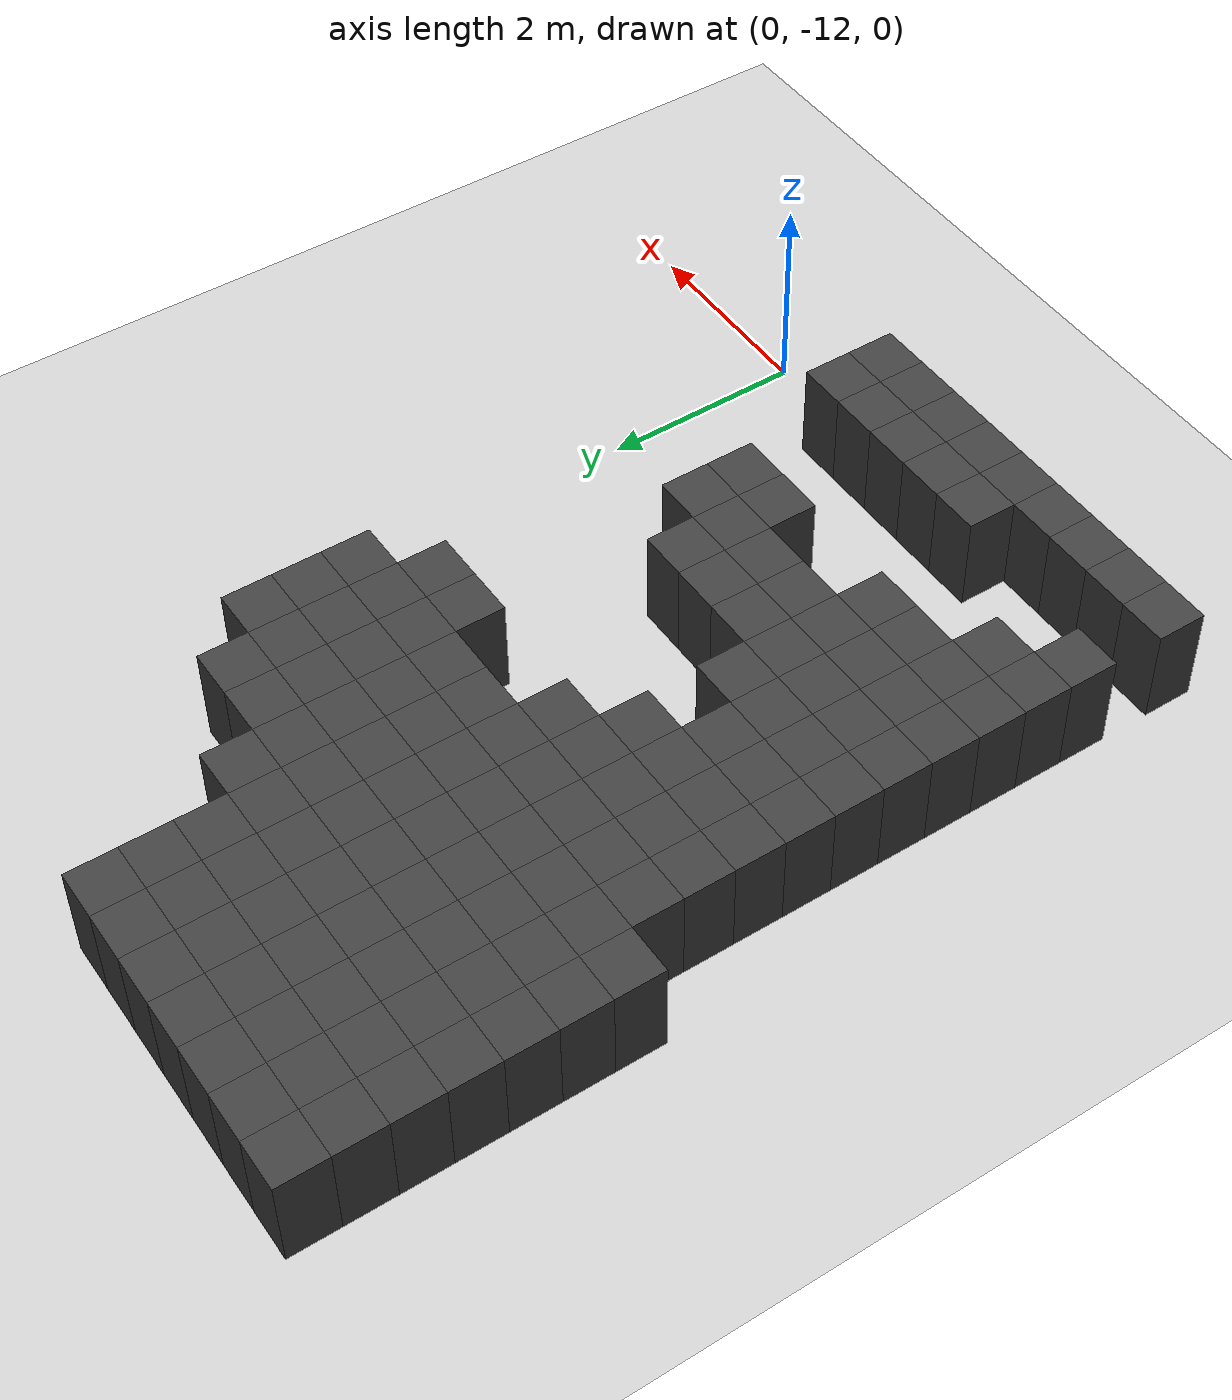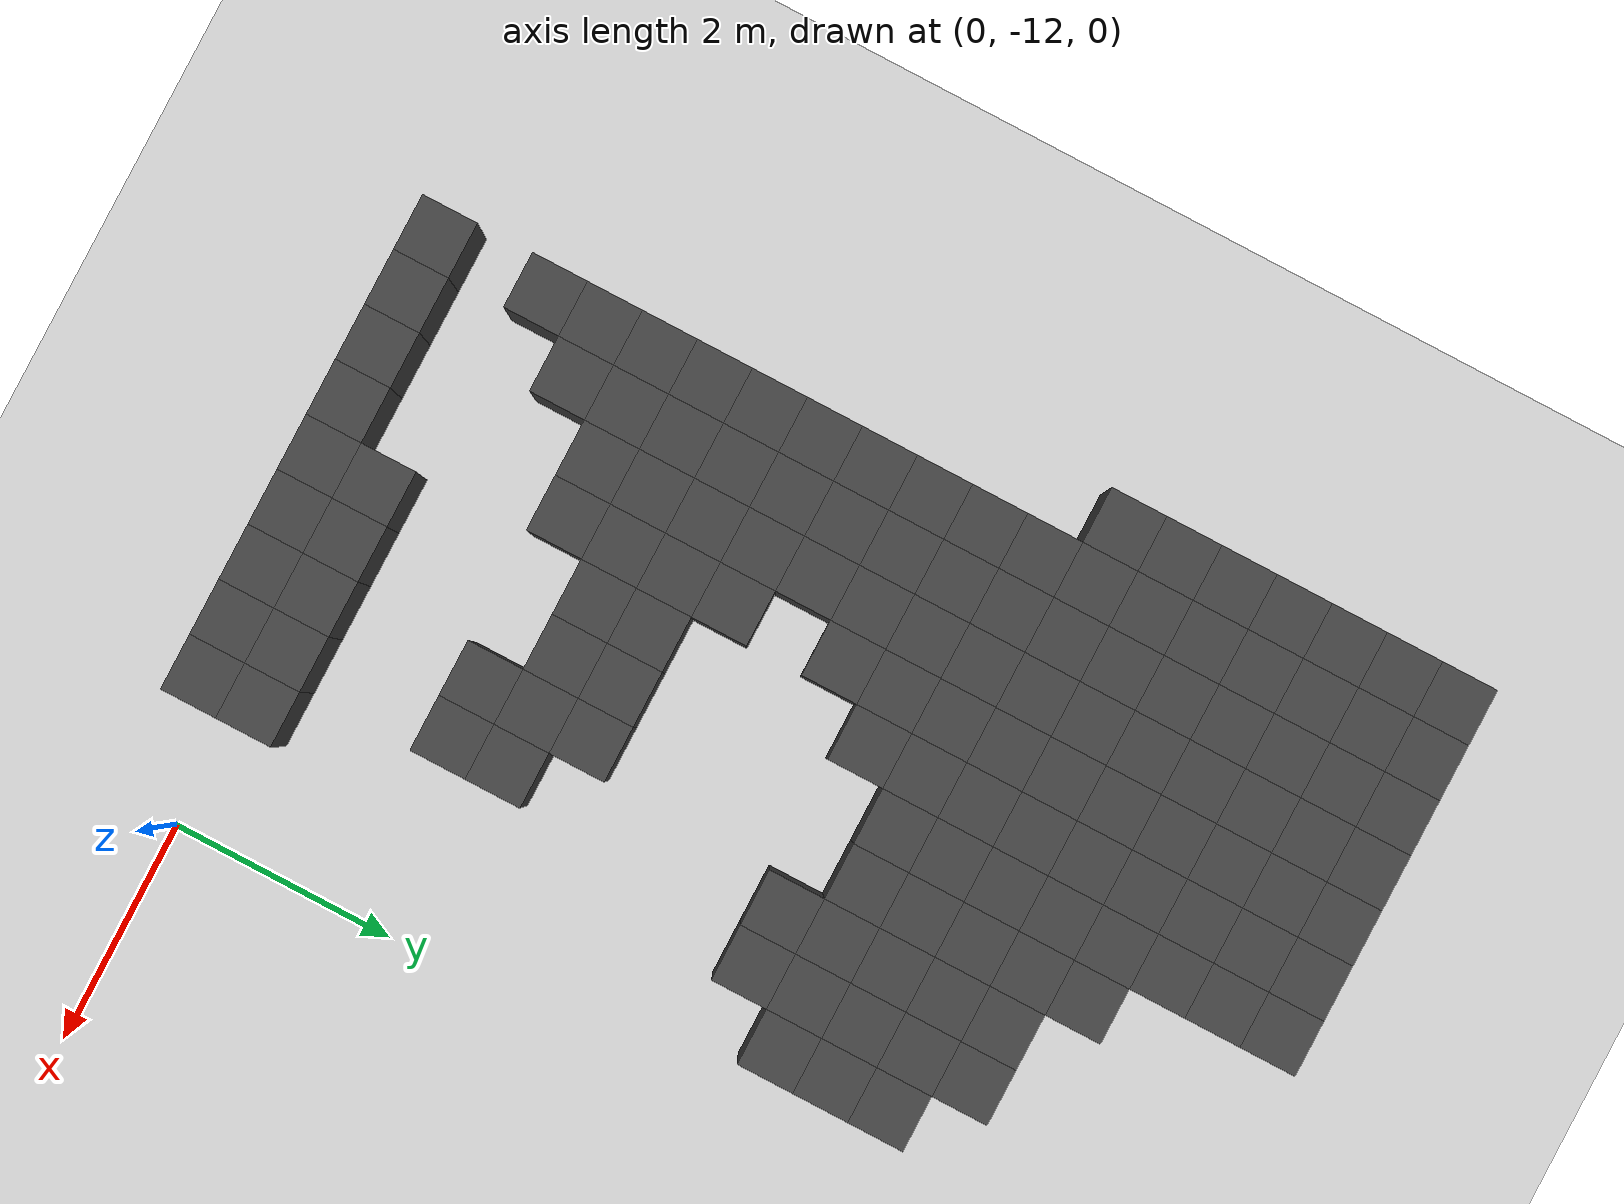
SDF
<sdf version="1.7">
 <world name="map_9544">
  <model name="ground_plane">
   <static>true</static>
   <link name="link">
    <collision name="collision">
     <geometry><plane><normal>0 0 1</normal><size>200 200</size></plane></geometry>
    </collision>
    <visual name="visual">
     <geometry><plane><normal>0 0 1</normal><size>200 200</size></plane></geometry>
     <material><ambient>0.8 0.8 0.8 1</ambient><diffuse>0.8 0.8 0.8 1</diffuse></material>
    </visual>
   </link>
  </model>
  <model name="maze_environment">
   <static>true</static>
   <link name="wall_519">
    <pose>-5.750 -3.250 0.500 0 0 0</pose>
    <collision name="col"><geometry><box><size>0.5 0.5 1.0</size></box></geometry></collision>
    <visual name="vis">
     <geometry><box><size>0.5 0.5 1.0</size></box></geometry>
     <material><ambient>0.15 0.15 0.15 1</ambient><diffuse>0.25 0.25 0.25 1</diffuse></material>
    </visual>
   </link>
   <link name="wall_520">
    <pose>-5.250 -3.250 0.500 0 0 0</pose>
    <collision name="col"><geometry><box><size>0.5 0.5 1.0</size></box></geometry></collision>
    <visual name="vis">
     <geometry><box><size>0.5 0.5 1.0</size></box></geometry>
     <material><ambient>0.15 0.15 0.15 1</ambient><diffuse>0.25 0.25 0.25 1</diffuse></material>
    </visual>
   </link>
   <link name="wall_521">
    <pose>-4.750 -3.250 0.500 0 0 0</pose>
    <collision name="col"><geometry><box><size>0.5 0.5 1.0</size></box></geometry></collision>
    <visual name="vis">
     <geometry><box><size>0.5 0.5 1.0</size></box></geometry>
     <material><ambient>0.15 0.15 0.15 1</ambient><diffuse>0.25 0.25 0.25 1</diffuse></material>
    </visual>
   </link>
   <link name="wall_522">
    <pose>-4.250 -3.250 0.500 0 0 0</pose>
    <collision name="col"><geometry><box><size>0.5 0.5 1.0</size></box></geometry></collision>
    <visual name="vis">
     <geometry><box><size>0.5 0.5 1.0</size></box></geometry>
     <material><ambient>0.15 0.15 0.15 1</ambient><diffuse>0.25 0.25 0.25 1</diffuse></material>
    </visual>
   </link>
   <link name="wall_523">
    <pose>-3.750 -3.250 0.500 0 0 0</pose>
    <collision name="col"><geometry><box><size>0.5 0.5 1.0</size></box></geometry></collision>
    <visual name="vis">
     <geometry><box><size>0.5 0.5 1.0</size></box></geometry>
     <material><ambient>0.15 0.15 0.15 1</ambient><diffuse>0.25 0.25 0.25 1</diffuse></material>
    </visual>
   </link>
   <link name="wall_524">
    <pose>-3.250 -3.250 0.500 0 0 0</pose>
    <collision name="col"><geometry><box><size>0.5 0.5 1.0</size></box></geometry></collision>
    <visual name="vis">
     <geometry><box><size>0.5 0.5 1.0</size></box></geometry>
     <material><ambient>0.15 0.15 0.15 1</ambient><diffuse>0.25 0.25 0.25 1</diffuse></material>
    </visual>
   </link>
   <link name="wall_525">
    <pose>-2.750 -3.250 0.500 0 0 0</pose>
    <collision name="col"><geometry><box><size>0.5 0.5 1.0</size></box></geometry></collision>
    <visual name="vis">
     <geometry><box><size>0.5 0.5 1.0</size></box></geometry>
     <material><ambient>0.15 0.15 0.15 1</ambient><diffuse>0.25 0.25 0.25 1</diffuse></material>
    </visual>
   </link>
   <link name="wall_541">
    <pose>-5.750 -3.750 0.500 0 0 0</pose>
    <collision name="col"><geometry><box><size>0.5 0.5 1.0</size></box></geometry></collision>
    <visual name="vis">
     <geometry><box><size>0.5 0.5 1.0</size></box></geometry>
     <material><ambient>0.15 0.15 0.15 1</ambient><diffuse>0.25 0.25 0.25 1</diffuse></material>
    </visual>
   </link>
   <link name="wall_542">
    <pose>-5.250 -3.750 0.500 0 0 0</pose>
    <collision name="col"><geometry><box><size>0.5 0.5 1.0</size></box></geometry></collision>
    <visual name="vis">
     <geometry><box><size>0.5 0.5 1.0</size></box></geometry>
     <material><ambient>0.15 0.15 0.15 1</ambient><diffuse>0.25 0.25 0.25 1</diffuse></material>
    </visual>
   </link>
   <link name="wall_543">
    <pose>-4.750 -3.750 0.500 0 0 0</pose>
    <collision name="col"><geometry><box><size>0.5 0.5 1.0</size></box></geometry></collision>
    <visual name="vis">
     <geometry><box><size>0.5 0.5 1.0</size></box></geometry>
     <material><ambient>0.15 0.15 0.15 1</ambient><diffuse>0.25 0.25 0.25 1</diffuse></material>
    </visual>
   </link>
   <link name="wall_544">
    <pose>-4.250 -3.750 0.500 0 0 0</pose>
    <collision name="col"><geometry><box><size>0.5 0.5 1.0</size></box></geometry></collision>
    <visual name="vis">
     <geometry><box><size>0.5 0.5 1.0</size></box></geometry>
     <material><ambient>0.15 0.15 0.15 1</ambient><diffuse>0.25 0.25 0.25 1</diffuse></material>
    </visual>
   </link>
   <link name="wall_545">
    <pose>-3.750 -3.750 0.500 0 0 0</pose>
    <collision name="col"><geometry><box><size>0.5 0.5 1.0</size></box></geometry></collision>
    <visual name="vis">
     <geometry><box><size>0.5 0.5 1.0</size></box></geometry>
     <material><ambient>0.15 0.15 0.15 1</ambient><diffuse>0.25 0.25 0.25 1</diffuse></material>
    </visual>
   </link>
   <link name="wall_546">
    <pose>-3.250 -3.750 0.500 0 0 0</pose>
    <collision name="col"><geometry><box><size>0.5 0.5 1.0</size></box></geometry></collision>
    <visual name="vis">
     <geometry><box><size>0.5 0.5 1.0</size></box></geometry>
     <material><ambient>0.15 0.15 0.15 1</ambient><diffuse>0.25 0.25 0.25 1</diffuse></material>
    </visual>
   </link>
   <link name="wall_547">
    <pose>-2.750 -3.750 0.500 0 0 0</pose>
    <collision name="col"><geometry><box><size>0.5 0.5 1.0</size></box></geometry></collision>
    <visual name="vis">
     <geometry><box><size>0.5 0.5 1.0</size></box></geometry>
     <material><ambient>0.15 0.15 0.15 1</ambient><diffuse>0.25 0.25 0.25 1</diffuse></material>
    </visual>
   </link>
   <link name="wall_564">
    <pose>-5.750 -4.250 0.500 0 0 0</pose>
    <collision name="col"><geometry><box><size>0.5 0.5 1.0</size></box></geometry></collision>
    <visual name="vis">
     <geometry><box><size>0.5 0.5 1.0</size></box></geometry>
     <material><ambient>0.15 0.15 0.15 1</ambient><diffuse>0.25 0.25 0.25 1</diffuse></material>
    </visual>
   </link>
   <link name="wall_565">
    <pose>-5.250 -4.250 0.500 0 0 0</pose>
    <collision name="col"><geometry><box><size>0.5 0.5 1.0</size></box></geometry></collision>
    <visual name="vis">
     <geometry><box><size>0.5 0.5 1.0</size></box></geometry>
     <material><ambient>0.15 0.15 0.15 1</ambient><diffuse>0.25 0.25 0.25 1</diffuse></material>
    </visual>
   </link>
   <link name="wall_566">
    <pose>-4.750 -4.250 0.500 0 0 0</pose>
    <collision name="col"><geometry><box><size>0.5 0.5 1.0</size></box></geometry></collision>
    <visual name="vis">
     <geometry><box><size>0.5 0.5 1.0</size></box></geometry>
     <material><ambient>0.15 0.15 0.15 1</ambient><diffuse>0.25 0.25 0.25 1</diffuse></material>
    </visual>
   </link>
   <link name="wall_567">
    <pose>-4.250 -4.250 0.500 0 0 0</pose>
    <collision name="col"><geometry><box><size>0.5 0.5 1.0</size></box></geometry></collision>
    <visual name="vis">
     <geometry><box><size>0.5 0.5 1.0</size></box></geometry>
     <material><ambient>0.15 0.15 0.15 1</ambient><diffuse>0.25 0.25 0.25 1</diffuse></material>
    </visual>
   </link>
   <link name="wall_568">
    <pose>-3.750 -4.250 0.500 0 0 0</pose>
    <collision name="col"><geometry><box><size>0.5 0.5 1.0</size></box></geometry></collision>
    <visual name="vis">
     <geometry><box><size>0.5 0.5 1.0</size></box></geometry>
     <material><ambient>0.15 0.15 0.15 1</ambient><diffuse>0.25 0.25 0.25 1</diffuse></material>
    </visual>
   </link>
   <link name="wall_569">
    <pose>-3.250 -4.250 0.500 0 0 0</pose>
    <collision name="col"><geometry><box><size>0.5 0.5 1.0</size></box></geometry></collision>
    <visual name="vis">
     <geometry><box><size>0.5 0.5 1.0</size></box></geometry>
     <material><ambient>0.15 0.15 0.15 1</ambient><diffuse>0.25 0.25 0.25 1</diffuse></material>
    </visual>
   </link>
   <link name="wall_570">
    <pose>-2.750 -4.250 0.500 0 0 0</pose>
    <collision name="col"><geometry><box><size>0.5 0.5 1.0</size></box></geometry></collision>
    <visual name="vis">
     <geometry><box><size>0.5 0.5 1.0</size></box></geometry>
     <material><ambient>0.15 0.15 0.15 1</ambient><diffuse>0.25 0.25 0.25 1</diffuse></material>
    </visual>
   </link>
   <link name="wall_593">
    <pose>-5.750 -4.750 0.500 0 0 0</pose>
    <collision name="col"><geometry><box><size>0.5 0.5 1.0</size></box></geometry></collision>
    <visual name="vis">
     <geometry><box><size>0.5 0.5 1.0</size></box></geometry>
     <material><ambient>0.15 0.15 0.15 1</ambient><diffuse>0.25 0.25 0.25 1</diffuse></material>
    </visual>
   </link>
   <link name="wall_594">
    <pose>-5.250 -4.750 0.500 0 0 0</pose>
    <collision name="col"><geometry><box><size>0.5 0.5 1.0</size></box></geometry></collision>
    <visual name="vis">
     <geometry><box><size>0.5 0.5 1.0</size></box></geometry>
     <material><ambient>0.15 0.15 0.15 1</ambient><diffuse>0.25 0.25 0.25 1</diffuse></material>
    </visual>
   </link>
   <link name="wall_595">
    <pose>-4.750 -4.750 0.500 0 0 0</pose>
    <collision name="col"><geometry><box><size>0.5 0.5 1.0</size></box></geometry></collision>
    <visual name="vis">
     <geometry><box><size>0.5 0.5 1.0</size></box></geometry>
     <material><ambient>0.15 0.15 0.15 1</ambient><diffuse>0.25 0.25 0.25 1</diffuse></material>
    </visual>
   </link>
   <link name="wall_596">
    <pose>-4.250 -4.750 0.500 0 0 0</pose>
    <collision name="col"><geometry><box><size>0.5 0.5 1.0</size></box></geometry></collision>
    <visual name="vis">
     <geometry><box><size>0.5 0.5 1.0</size></box></geometry>
     <material><ambient>0.15 0.15 0.15 1</ambient><diffuse>0.25 0.25 0.25 1</diffuse></material>
    </visual>
   </link>
   <link name="wall_597">
    <pose>-3.750 -4.750 0.500 0 0 0</pose>
    <collision name="col"><geometry><box><size>0.5 0.5 1.0</size></box></geometry></collision>
    <visual name="vis">
     <geometry><box><size>0.5 0.5 1.0</size></box></geometry>
     <material><ambient>0.15 0.15 0.15 1</ambient><diffuse>0.25 0.25 0.25 1</diffuse></material>
    </visual>
   </link>
   <link name="wall_598">
    <pose>-3.250 -4.750 0.500 0 0 0</pose>
    <collision name="col"><geometry><box><size>0.5 0.5 1.0</size></box></geometry></collision>
    <visual name="vis">
     <geometry><box><size>0.5 0.5 1.0</size></box></geometry>
     <material><ambient>0.15 0.15 0.15 1</ambient><diffuse>0.25 0.25 0.25 1</diffuse></material>
    </visual>
   </link>
   <link name="wall_599">
    <pose>-2.750 -4.750 0.500 0 0 0</pose>
    <collision name="col"><geometry><box><size>0.5 0.5 1.0</size></box></geometry></collision>
    <visual name="vis">
     <geometry><box><size>0.5 0.5 1.0</size></box></geometry>
     <material><ambient>0.15 0.15 0.15 1</ambient><diffuse>0.25 0.25 0.25 1</diffuse></material>
    </visual>
   </link>
   <link name="wall_600">
    <pose>-2.250 -4.750 0.500 0 0 0</pose>
    <collision name="col"><geometry><box><size>0.5 0.5 1.0</size></box></geometry></collision>
    <visual name="vis">
     <geometry><box><size>0.5 0.5 1.0</size></box></geometry>
     <material><ambient>0.15 0.15 0.15 1</ambient><diffuse>0.25 0.25 0.25 1</diffuse></material>
    </visual>
   </link>
   <link name="wall_624">
    <pose>-5.750 -5.250 0.500 0 0 0</pose>
    <collision name="col"><geometry><box><size>0.5 0.5 1.0</size></box></geometry></collision>
    <visual name="vis">
     <geometry><box><size>0.5 0.5 1.0</size></box></geometry>
     <material><ambient>0.15 0.15 0.15 1</ambient><diffuse>0.25 0.25 0.25 1</diffuse></material>
    </visual>
   </link>
   <link name="wall_625">
    <pose>-5.250 -5.250 0.500 0 0 0</pose>
    <collision name="col"><geometry><box><size>0.5 0.5 1.0</size></box></geometry></collision>
    <visual name="vis">
     <geometry><box><size>0.5 0.5 1.0</size></box></geometry>
     <material><ambient>0.15 0.15 0.15 1</ambient><diffuse>0.25 0.25 0.25 1</diffuse></material>
    </visual>
   </link>
   <link name="wall_626">
    <pose>-4.750 -5.250 0.500 0 0 0</pose>
    <collision name="col"><geometry><box><size>0.5 0.5 1.0</size></box></geometry></collision>
    <visual name="vis">
     <geometry><box><size>0.5 0.5 1.0</size></box></geometry>
     <material><ambient>0.15 0.15 0.15 1</ambient><diffuse>0.25 0.25 0.25 1</diffuse></material>
    </visual>
   </link>
   <link name="wall_627">
    <pose>-4.250 -5.250 0.500 0 0 0</pose>
    <collision name="col"><geometry><box><size>0.5 0.5 1.0</size></box></geometry></collision>
    <visual name="vis">
     <geometry><box><size>0.5 0.5 1.0</size></box></geometry>
     <material><ambient>0.15 0.15 0.15 1</ambient><diffuse>0.25 0.25 0.25 1</diffuse></material>
    </visual>
   </link>
   <link name="wall_628">
    <pose>-3.750 -5.250 0.500 0 0 0</pose>
    <collision name="col"><geometry><box><size>0.5 0.5 1.0</size></box></geometry></collision>
    <visual name="vis">
     <geometry><box><size>0.5 0.5 1.0</size></box></geometry>
     <material><ambient>0.15 0.15 0.15 1</ambient><diffuse>0.25 0.25 0.25 1</diffuse></material>
    </visual>
   </link>
   <link name="wall_629">
    <pose>-3.250 -5.250 0.500 0 0 0</pose>
    <collision name="col"><geometry><box><size>0.5 0.5 1.0</size></box></geometry></collision>
    <visual name="vis">
     <geometry><box><size>0.5 0.5 1.0</size></box></geometry>
     <material><ambient>0.15 0.15 0.15 1</ambient><diffuse>0.25 0.25 0.25 1</diffuse></material>
    </visual>
   </link>
   <link name="wall_630">
    <pose>-2.750 -5.250 0.500 0 0 0</pose>
    <collision name="col"><geometry><box><size>0.5 0.5 1.0</size></box></geometry></collision>
    <visual name="vis">
     <geometry><box><size>0.5 0.5 1.0</size></box></geometry>
     <material><ambient>0.15 0.15 0.15 1</ambient><diffuse>0.25 0.25 0.25 1</diffuse></material>
    </visual>
   </link>
   <link name="wall_631">
    <pose>-2.250 -5.250 0.500 0 0 0</pose>
    <collision name="col"><geometry><box><size>0.5 0.5 1.0</size></box></geometry></collision>
    <visual name="vis">
     <geometry><box><size>0.5 0.5 1.0</size></box></geometry>
     <material><ambient>0.15 0.15 0.15 1</ambient><diffuse>0.25 0.25 0.25 1</diffuse></material>
    </visual>
   </link>
   <link name="wall_632">
    <pose>-1.750 -5.250 0.500 0 0 0</pose>
    <collision name="col"><geometry><box><size>0.5 0.5 1.0</size></box></geometry></collision>
    <visual name="vis">
     <geometry><box><size>0.5 0.5 1.0</size></box></geometry>
     <material><ambient>0.15 0.15 0.15 1</ambient><diffuse>0.25 0.25 0.25 1</diffuse></material>
    </visual>
   </link>
   <link name="wall_633">
    <pose>-1.250 -5.250 0.500 0 0 0</pose>
    <collision name="col"><geometry><box><size>0.5 0.5 1.0</size></box></geometry></collision>
    <visual name="vis">
     <geometry><box><size>0.5 0.5 1.0</size></box></geometry>
     <material><ambient>0.15 0.15 0.15 1</ambient><diffuse>0.25 0.25 0.25 1</diffuse></material>
    </visual>
   </link>
   <link name="wall_649">
    <pose>-5.750 -5.750 0.500 0 0 0</pose>
    <collision name="col"><geometry><box><size>0.5 0.5 1.0</size></box></geometry></collision>
    <visual name="vis">
     <geometry><box><size>0.5 0.5 1.0</size></box></geometry>
     <material><ambient>0.15 0.15 0.15 1</ambient><diffuse>0.25 0.25 0.25 1</diffuse></material>
    </visual>
   </link>
   <link name="wall_650">
    <pose>-5.250 -5.750 0.500 0 0 0</pose>
    <collision name="col"><geometry><box><size>0.5 0.5 1.0</size></box></geometry></collision>
    <visual name="vis">
     <geometry><box><size>0.5 0.5 1.0</size></box></geometry>
     <material><ambient>0.15 0.15 0.15 1</ambient><diffuse>0.25 0.25 0.25 1</diffuse></material>
    </visual>
   </link>
   <link name="wall_651">
    <pose>-4.750 -5.750 0.500 0 0 0</pose>
    <collision name="col"><geometry><box><size>0.5 0.5 1.0</size></box></geometry></collision>
    <visual name="vis">
     <geometry><box><size>0.5 0.5 1.0</size></box></geometry>
     <material><ambient>0.15 0.15 0.15 1</ambient><diffuse>0.25 0.25 0.25 1</diffuse></material>
    </visual>
   </link>
   <link name="wall_652">
    <pose>-4.250 -5.750 0.500 0 0 0</pose>
    <collision name="col"><geometry><box><size>0.5 0.5 1.0</size></box></geometry></collision>
    <visual name="vis">
     <geometry><box><size>0.5 0.5 1.0</size></box></geometry>
     <material><ambient>0.15 0.15 0.15 1</ambient><diffuse>0.25 0.25 0.25 1</diffuse></material>
    </visual>
   </link>
   <link name="wall_653">
    <pose>-3.750 -5.750 0.500 0 0 0</pose>
    <collision name="col"><geometry><box><size>0.5 0.5 1.0</size></box></geometry></collision>
    <visual name="vis">
     <geometry><box><size>0.5 0.5 1.0</size></box></geometry>
     <material><ambient>0.15 0.15 0.15 1</ambient><diffuse>0.25 0.25 0.25 1</diffuse></material>
    </visual>
   </link>
   <link name="wall_654">
    <pose>-3.250 -5.750 0.500 0 0 0</pose>
    <collision name="col"><geometry><box><size>0.5 0.5 1.0</size></box></geometry></collision>
    <visual name="vis">
     <geometry><box><size>0.5 0.5 1.0</size></box></geometry>
     <material><ambient>0.15 0.15 0.15 1</ambient><diffuse>0.25 0.25 0.25 1</diffuse></material>
    </visual>
   </link>
   <link name="wall_655">
    <pose>-2.750 -5.750 0.500 0 0 0</pose>
    <collision name="col"><geometry><box><size>0.5 0.5 1.0</size></box></geometry></collision>
    <visual name="vis">
     <geometry><box><size>0.5 0.5 1.0</size></box></geometry>
     <material><ambient>0.15 0.15 0.15 1</ambient><diffuse>0.25 0.25 0.25 1</diffuse></material>
    </visual>
   </link>
   <link name="wall_656">
    <pose>-2.250 -5.750 0.500 0 0 0</pose>
    <collision name="col"><geometry><box><size>0.5 0.5 1.0</size></box></geometry></collision>
    <visual name="vis">
     <geometry><box><size>0.5 0.5 1.0</size></box></geometry>
     <material><ambient>0.15 0.15 0.15 1</ambient><diffuse>0.25 0.25 0.25 1</diffuse></material>
    </visual>
   </link>
   <link name="wall_657">
    <pose>-1.750 -5.750 0.500 0 0 0</pose>
    <collision name="col"><geometry><box><size>0.5 0.5 1.0</size></box></geometry></collision>
    <visual name="vis">
     <geometry><box><size>0.5 0.5 1.0</size></box></geometry>
     <material><ambient>0.15 0.15 0.15 1</ambient><diffuse>0.25 0.25 0.25 1</diffuse></material>
    </visual>
   </link>
   <link name="wall_658">
    <pose>-1.250 -5.750 0.500 0 0 0</pose>
    <collision name="col"><geometry><box><size>0.5 0.5 1.0</size></box></geometry></collision>
    <visual name="vis">
     <geometry><box><size>0.5 0.5 1.0</size></box></geometry>
     <material><ambient>0.15 0.15 0.15 1</ambient><diffuse>0.25 0.25 0.25 1</diffuse></material>
    </visual>
   </link>
   <link name="wall_659">
    <pose>-0.750 -5.750 0.500 0 0 0</pose>
    <collision name="col"><geometry><box><size>0.5 0.5 1.0</size></box></geometry></collision>
    <visual name="vis">
     <geometry><box><size>0.5 0.5 1.0</size></box></geometry>
     <material><ambient>0.15 0.15 0.15 1</ambient><diffuse>0.25 0.25 0.25 1</diffuse></material>
    </visual>
   </link>
   <link name="wall_673">
    <pose>-5.750 -6.250 0.500 0 0 0</pose>
    <collision name="col"><geometry><box><size>0.5 0.5 1.0</size></box></geometry></collision>
    <visual name="vis">
     <geometry><box><size>0.5 0.5 1.0</size></box></geometry>
     <material><ambient>0.15 0.15 0.15 1</ambient><diffuse>0.25 0.25 0.25 1</diffuse></material>
    </visual>
   </link>
   <link name="wall_674">
    <pose>-5.250 -6.250 0.500 0 0 0</pose>
    <collision name="col"><geometry><box><size>0.5 0.5 1.0</size></box></geometry></collision>
    <visual name="vis">
     <geometry><box><size>0.5 0.5 1.0</size></box></geometry>
     <material><ambient>0.15 0.15 0.15 1</ambient><diffuse>0.25 0.25 0.25 1</diffuse></material>
    </visual>
   </link>
   <link name="wall_675">
    <pose>-4.750 -6.250 0.500 0 0 0</pose>
    <collision name="col"><geometry><box><size>0.5 0.5 1.0</size></box></geometry></collision>
    <visual name="vis">
     <geometry><box><size>0.5 0.5 1.0</size></box></geometry>
     <material><ambient>0.15 0.15 0.15 1</ambient><diffuse>0.25 0.25 0.25 1</diffuse></material>
    </visual>
   </link>
   <link name="wall_676">
    <pose>-4.250 -6.250 0.500 0 0 0</pose>
    <collision name="col"><geometry><box><size>0.5 0.5 1.0</size></box></geometry></collision>
    <visual name="vis">
     <geometry><box><size>0.5 0.5 1.0</size></box></geometry>
     <material><ambient>0.15 0.15 0.15 1</ambient><diffuse>0.25 0.25 0.25 1</diffuse></material>
    </visual>
   </link>
   <link name="wall_677">
    <pose>-3.750 -6.250 0.500 0 0 0</pose>
    <collision name="col"><geometry><box><size>0.5 0.5 1.0</size></box></geometry></collision>
    <visual name="vis">
     <geometry><box><size>0.5 0.5 1.0</size></box></geometry>
     <material><ambient>0.15 0.15 0.15 1</ambient><diffuse>0.25 0.25 0.25 1</diffuse></material>
    </visual>
   </link>
   <link name="wall_678">
    <pose>-3.250 -6.250 0.500 0 0 0</pose>
    <collision name="col"><geometry><box><size>0.5 0.5 1.0</size></box></geometry></collision>
    <visual name="vis">
     <geometry><box><size>0.5 0.5 1.0</size></box></geometry>
     <material><ambient>0.15 0.15 0.15 1</ambient><diffuse>0.25 0.25 0.25 1</diffuse></material>
    </visual>
   </link>
   <link name="wall_679">
    <pose>-2.750 -6.250 0.500 0 0 0</pose>
    <collision name="col"><geometry><box><size>0.5 0.5 1.0</size></box></geometry></collision>
    <visual name="vis">
     <geometry><box><size>0.5 0.5 1.0</size></box></geometry>
     <material><ambient>0.15 0.15 0.15 1</ambient><diffuse>0.25 0.25 0.25 1</diffuse></material>
    </visual>
   </link>
   <link name="wall_680">
    <pose>-2.250 -6.250 0.500 0 0 0</pose>
    <collision name="col"><geometry><box><size>0.5 0.5 1.0</size></box></geometry></collision>
    <visual name="vis">
     <geometry><box><size>0.5 0.5 1.0</size></box></geometry>
     <material><ambient>0.15 0.15 0.15 1</ambient><diffuse>0.25 0.25 0.25 1</diffuse></material>
    </visual>
   </link>
   <link name="wall_681">
    <pose>-1.750 -6.250 0.500 0 0 0</pose>
    <collision name="col"><geometry><box><size>0.5 0.5 1.0</size></box></geometry></collision>
    <visual name="vis">
     <geometry><box><size>0.5 0.5 1.0</size></box></geometry>
     <material><ambient>0.15 0.15 0.15 1</ambient><diffuse>0.25 0.25 0.25 1</diffuse></material>
    </visual>
   </link>
   <link name="wall_682">
    <pose>-1.250 -6.250 0.500 0 0 0</pose>
    <collision name="col"><geometry><box><size>0.5 0.5 1.0</size></box></geometry></collision>
    <visual name="vis">
     <geometry><box><size>0.5 0.5 1.0</size></box></geometry>
     <material><ambient>0.15 0.15 0.15 1</ambient><diffuse>0.25 0.25 0.25 1</diffuse></material>
    </visual>
   </link>
   <link name="wall_683">
    <pose>-0.750 -6.250 0.500 0 0 0</pose>
    <collision name="col"><geometry><box><size>0.5 0.5 1.0</size></box></geometry></collision>
    <visual name="vis">
     <geometry><box><size>0.5 0.5 1.0</size></box></geometry>
     <material><ambient>0.15 0.15 0.15 1</ambient><diffuse>0.25 0.25 0.25 1</diffuse></material>
    </visual>
   </link>
   <link name="wall_709">
    <pose>-5.250 -6.750 0.500 0 0 0</pose>
    <collision name="col"><geometry><box><size>0.5 0.5 1.0</size></box></geometry></collision>
    <visual name="vis">
     <geometry><box><size>0.5 0.5 1.0</size></box></geometry>
     <material><ambient>0.15 0.15 0.15 1</ambient><diffuse>0.25 0.25 0.25 1</diffuse></material>
    </visual>
   </link>
   <link name="wall_710">
    <pose>-4.750 -6.750 0.500 0 0 0</pose>
    <collision name="col"><geometry><box><size>0.5 0.5 1.0</size></box></geometry></collision>
    <visual name="vis">
     <geometry><box><size>0.5 0.5 1.0</size></box></geometry>
     <material><ambient>0.15 0.15 0.15 1</ambient><diffuse>0.25 0.25 0.25 1</diffuse></material>
    </visual>
   </link>
   <link name="wall_711">
    <pose>-4.250 -6.750 0.500 0 0 0</pose>
    <collision name="col"><geometry><box><size>0.5 0.5 1.0</size></box></geometry></collision>
    <visual name="vis">
     <geometry><box><size>0.5 0.5 1.0</size></box></geometry>
     <material><ambient>0.15 0.15 0.15 1</ambient><diffuse>0.25 0.25 0.25 1</diffuse></material>
    </visual>
   </link>
   <link name="wall_712">
    <pose>-3.750 -6.750 0.500 0 0 0</pose>
    <collision name="col"><geometry><box><size>0.5 0.5 1.0</size></box></geometry></collision>
    <visual name="vis">
     <geometry><box><size>0.5 0.5 1.0</size></box></geometry>
     <material><ambient>0.15 0.15 0.15 1</ambient><diffuse>0.25 0.25 0.25 1</diffuse></material>
    </visual>
   </link>
   <link name="wall_713">
    <pose>-3.250 -6.750 0.500 0 0 0</pose>
    <collision name="col"><geometry><box><size>0.5 0.5 1.0</size></box></geometry></collision>
    <visual name="vis">
     <geometry><box><size>0.5 0.5 1.0</size></box></geometry>
     <material><ambient>0.15 0.15 0.15 1</ambient><diffuse>0.25 0.25 0.25 1</diffuse></material>
    </visual>
   </link>
   <link name="wall_714">
    <pose>-2.750 -6.750 0.500 0 0 0</pose>
    <collision name="col"><geometry><box><size>0.5 0.5 1.0</size></box></geometry></collision>
    <visual name="vis">
     <geometry><box><size>0.5 0.5 1.0</size></box></geometry>
     <material><ambient>0.15 0.15 0.15 1</ambient><diffuse>0.25 0.25 0.25 1</diffuse></material>
    </visual>
   </link>
   <link name="wall_715">
    <pose>-2.250 -6.750 0.500 0 0 0</pose>
    <collision name="col"><geometry><box><size>0.5 0.5 1.0</size></box></geometry></collision>
    <visual name="vis">
     <geometry><box><size>0.5 0.5 1.0</size></box></geometry>
     <material><ambient>0.15 0.15 0.15 1</ambient><diffuse>0.25 0.25 0.25 1</diffuse></material>
    </visual>
   </link>
   <link name="wall_716">
    <pose>-1.750 -6.750 0.500 0 0 0</pose>
    <collision name="col"><geometry><box><size>0.5 0.5 1.0</size></box></geometry></collision>
    <visual name="vis">
     <geometry><box><size>0.5 0.5 1.0</size></box></geometry>
     <material><ambient>0.15 0.15 0.15 1</ambient><diffuse>0.25 0.25 0.25 1</diffuse></material>
    </visual>
   </link>
   <link name="wall_717">
    <pose>-1.250 -6.750 0.500 0 0 0</pose>
    <collision name="col"><geometry><box><size>0.5 0.5 1.0</size></box></geometry></collision>
    <visual name="vis">
     <geometry><box><size>0.5 0.5 1.0</size></box></geometry>
     <material><ambient>0.15 0.15 0.15 1</ambient><diffuse>0.25 0.25 0.25 1</diffuse></material>
    </visual>
   </link>
   <link name="wall_718">
    <pose>-0.750 -6.750 0.500 0 0 0</pose>
    <collision name="col"><geometry><box><size>0.5 0.5 1.0</size></box></geometry></collision>
    <visual name="vis">
     <geometry><box><size>0.5 0.5 1.0</size></box></geometry>
     <material><ambient>0.15 0.15 0.15 1</ambient><diffuse>0.25 0.25 0.25 1</diffuse></material>
    </visual>
   </link>
   <link name="wall_745">
    <pose>-5.250 -7.250 0.500 0 0 0</pose>
    <collision name="col"><geometry><box><size>0.5 0.5 1.0</size></box></geometry></collision>
    <visual name="vis">
     <geometry><box><size>0.5 0.5 1.0</size></box></geometry>
     <material><ambient>0.15 0.15 0.15 1</ambient><diffuse>0.25 0.25 0.25 1</diffuse></material>
    </visual>
   </link>
   <link name="wall_746">
    <pose>-4.750 -7.250 0.500 0 0 0</pose>
    <collision name="col"><geometry><box><size>0.5 0.5 1.0</size></box></geometry></collision>
    <visual name="vis">
     <geometry><box><size>0.5 0.5 1.0</size></box></geometry>
     <material><ambient>0.15 0.15 0.15 1</ambient><diffuse>0.25 0.25 0.25 1</diffuse></material>
    </visual>
   </link>
   <link name="wall_747">
    <pose>-4.250 -7.250 0.500 0 0 0</pose>
    <collision name="col"><geometry><box><size>0.5 0.5 1.0</size></box></geometry></collision>
    <visual name="vis">
     <geometry><box><size>0.5 0.5 1.0</size></box></geometry>
     <material><ambient>0.15 0.15 0.15 1</ambient><diffuse>0.25 0.25 0.25 1</diffuse></material>
    </visual>
   </link>
   <link name="wall_748">
    <pose>-3.750 -7.250 0.500 0 0 0</pose>
    <collision name="col"><geometry><box><size>0.5 0.5 1.0</size></box></geometry></collision>
    <visual name="vis">
     <geometry><box><size>0.5 0.5 1.0</size></box></geometry>
     <material><ambient>0.15 0.15 0.15 1</ambient><diffuse>0.25 0.25 0.25 1</diffuse></material>
    </visual>
   </link>
   <link name="wall_749">
    <pose>-3.250 -7.250 0.500 0 0 0</pose>
    <collision name="col"><geometry><box><size>0.5 0.5 1.0</size></box></geometry></collision>
    <visual name="vis">
     <geometry><box><size>0.5 0.5 1.0</size></box></geometry>
     <material><ambient>0.15 0.15 0.15 1</ambient><diffuse>0.25 0.25 0.25 1</diffuse></material>
    </visual>
   </link>
   <link name="wall_750">
    <pose>-1.750 -7.250 0.500 0 0 0</pose>
    <collision name="col"><geometry><box><size>0.5 0.5 1.0</size></box></geometry></collision>
    <visual name="vis">
     <geometry><box><size>0.5 0.5 1.0</size></box></geometry>
     <material><ambient>0.15 0.15 0.15 1</ambient><diffuse>0.25 0.25 0.25 1</diffuse></material>
    </visual>
   </link>
   <link name="wall_751">
    <pose>-1.250 -7.250 0.500 0 0 0</pose>
    <collision name="col"><geometry><box><size>0.5 0.5 1.0</size></box></geometry></collision>
    <visual name="vis">
     <geometry><box><size>0.5 0.5 1.0</size></box></geometry>
     <material><ambient>0.15 0.15 0.15 1</ambient><diffuse>0.25 0.25 0.25 1</diffuse></material>
    </visual>
   </link>
   <link name="wall_778">
    <pose>-5.250 -7.750 0.500 0 0 0</pose>
    <collision name="col"><geometry><box><size>0.5 0.5 1.0</size></box></geometry></collision>
    <visual name="vis">
     <geometry><box><size>0.5 0.5 1.0</size></box></geometry>
     <material><ambient>0.15 0.15 0.15 1</ambient><diffuse>0.25 0.25 0.25 1</diffuse></material>
    </visual>
   </link>
   <link name="wall_779">
    <pose>-4.750 -7.750 0.500 0 0 0</pose>
    <collision name="col"><geometry><box><size>0.5 0.5 1.0</size></box></geometry></collision>
    <visual name="vis">
     <geometry><box><size>0.5 0.5 1.0</size></box></geometry>
     <material><ambient>0.15 0.15 0.15 1</ambient><diffuse>0.25 0.25 0.25 1</diffuse></material>
    </visual>
   </link>
   <link name="wall_780">
    <pose>-4.250 -7.750 0.500 0 0 0</pose>
    <collision name="col"><geometry><box><size>0.5 0.5 1.0</size></box></geometry></collision>
    <visual name="vis">
     <geometry><box><size>0.5 0.5 1.0</size></box></geometry>
     <material><ambient>0.15 0.15 0.15 1</ambient><diffuse>0.25 0.25 0.25 1</diffuse></material>
    </visual>
   </link>
   <link name="wall_781">
    <pose>-3.750 -7.750 0.500 0 0 0</pose>
    <collision name="col"><geometry><box><size>0.5 0.5 1.0</size></box></geometry></collision>
    <visual name="vis">
     <geometry><box><size>0.5 0.5 1.0</size></box></geometry>
     <material><ambient>0.15 0.15 0.15 1</ambient><diffuse>0.25 0.25 0.25 1</diffuse></material>
    </visual>
   </link>
   <link name="wall_802">
    <pose>-5.250 -8.250 0.500 0 0 0</pose>
    <collision name="col"><geometry><box><size>0.5 0.5 1.0</size></box></geometry></collision>
    <visual name="vis">
     <geometry><box><size>0.5 0.5 1.0</size></box></geometry>
     <material><ambient>0.15 0.15 0.15 1</ambient><diffuse>0.25 0.25 0.25 1</diffuse></material>
    </visual>
   </link>
   <link name="wall_803">
    <pose>-4.750 -8.250 0.500 0 0 0</pose>
    <collision name="col"><geometry><box><size>0.5 0.5 1.0</size></box></geometry></collision>
    <visual name="vis">
     <geometry><box><size>0.5 0.5 1.0</size></box></geometry>
     <material><ambient>0.15 0.15 0.15 1</ambient><diffuse>0.25 0.25 0.25 1</diffuse></material>
    </visual>
   </link>
   <link name="wall_804">
    <pose>-4.250 -8.250 0.500 0 0 0</pose>
    <collision name="col"><geometry><box><size>0.5 0.5 1.0</size></box></geometry></collision>
    <visual name="vis">
     <geometry><box><size>0.5 0.5 1.0</size></box></geometry>
     <material><ambient>0.15 0.15 0.15 1</ambient><diffuse>0.25 0.25 0.25 1</diffuse></material>
    </visual>
   </link>
   <link name="wall_822">
    <pose>-5.250 -8.750 0.500 0 0 0</pose>
    <collision name="col"><geometry><box><size>0.5 0.5 1.0</size></box></geometry></collision>
    <visual name="vis">
     <geometry><box><size>0.5 0.5 1.0</size></box></geometry>
     <material><ambient>0.15 0.15 0.15 1</ambient><diffuse>0.25 0.25 0.25 1</diffuse></material>
    </visual>
   </link>
   <link name="wall_823">
    <pose>-4.750 -8.750 0.500 0 0 0</pose>
    <collision name="col"><geometry><box><size>0.5 0.5 1.0</size></box></geometry></collision>
    <visual name="vis">
     <geometry><box><size>0.5 0.5 1.0</size></box></geometry>
     <material><ambient>0.15 0.15 0.15 1</ambient><diffuse>0.25 0.25 0.25 1</diffuse></material>
    </visual>
   </link>
   <link name="wall_824">
    <pose>-4.250 -8.750 0.500 0 0 0</pose>
    <collision name="col"><geometry><box><size>0.5 0.5 1.0</size></box></geometry></collision>
    <visual name="vis">
     <geometry><box><size>0.5 0.5 1.0</size></box></geometry>
     <material><ambient>0.15 0.15 0.15 1</ambient><diffuse>0.25 0.25 0.25 1</diffuse></material>
    </visual>
   </link>
   <link name="wall_825">
    <pose>-3.750 -8.750 0.500 0 0 0</pose>
    <collision name="col"><geometry><box><size>0.5 0.5 1.0</size></box></geometry></collision>
    <visual name="vis">
     <geometry><box><size>0.5 0.5 1.0</size></box></geometry>
     <material><ambient>0.15 0.15 0.15 1</ambient><diffuse>0.25 0.25 0.25 1</diffuse></material>
    </visual>
   </link>
   <link name="wall_842">
    <pose>-5.250 -9.250 0.500 0 0 0</pose>
    <collision name="col"><geometry><box><size>0.5 0.5 1.0</size></box></geometry></collision>
    <visual name="vis">
     <geometry><box><size>0.5 0.5 1.0</size></box></geometry>
     <material><ambient>0.15 0.15 0.15 1</ambient><diffuse>0.25 0.25 0.25 1</diffuse></material>
    </visual>
   </link>
   <link name="wall_843">
    <pose>-4.750 -9.250 0.500 0 0 0</pose>
    <collision name="col"><geometry><box><size>0.5 0.5 1.0</size></box></geometry></collision>
    <visual name="vis">
     <geometry><box><size>0.5 0.5 1.0</size></box></geometry>
     <material><ambient>0.15 0.15 0.15 1</ambient><diffuse>0.25 0.25 0.25 1</diffuse></material>
    </visual>
   </link>
   <link name="wall_844">
    <pose>-4.250 -9.250 0.500 0 0 0</pose>
    <collision name="col"><geometry><box><size>0.5 0.5 1.0</size></box></geometry></collision>
    <visual name="vis">
     <geometry><box><size>0.5 0.5 1.0</size></box></geometry>
     <material><ambient>0.15 0.15 0.15 1</ambient><diffuse>0.25 0.25 0.25 1</diffuse></material>
    </visual>
   </link>
   <link name="wall_845">
    <pose>-3.750 -9.250 0.500 0 0 0</pose>
    <collision name="col"><geometry><box><size>0.5 0.5 1.0</size></box></geometry></collision>
    <visual name="vis">
     <geometry><box><size>0.5 0.5 1.0</size></box></geometry>
     <material><ambient>0.15 0.15 0.15 1</ambient><diffuse>0.25 0.25 0.25 1</diffuse></material>
    </visual>
   </link>
   <link name="wall_846">
    <pose>-3.250 -9.250 0.500 0 0 0</pose>
    <collision name="col"><geometry><box><size>0.5 0.5 1.0</size></box></geometry></collision>
    <visual name="vis">
     <geometry><box><size>0.5 0.5 1.0</size></box></geometry>
     <material><ambient>0.15 0.15 0.15 1</ambient><diffuse>0.25 0.25 0.25 1</diffuse></material>
    </visual>
   </link>
   <link name="wall_847">
    <pose>-2.750 -9.250 0.500 0 0 0</pose>
    <collision name="col"><geometry><box><size>0.5 0.5 1.0</size></box></geometry></collision>
    <visual name="vis">
     <geometry><box><size>0.5 0.5 1.0</size></box></geometry>
     <material><ambient>0.15 0.15 0.15 1</ambient><diffuse>0.25 0.25 0.25 1</diffuse></material>
    </visual>
   </link>
   <link name="wall_848">
    <pose>-2.250 -9.250 0.500 0 0 0</pose>
    <collision name="col"><geometry><box><size>0.5 0.5 1.0</size></box></geometry></collision>
    <visual name="vis">
     <geometry><box><size>0.5 0.5 1.0</size></box></geometry>
     <material><ambient>0.15 0.15 0.15 1</ambient><diffuse>0.25 0.25 0.25 1</diffuse></material>
    </visual>
   </link>
   <link name="wall_869">
    <pose>-5.250 -9.750 0.500 0 0 0</pose>
    <collision name="col"><geometry><box><size>0.5 0.5 1.0</size></box></geometry></collision>
    <visual name="vis">
     <geometry><box><size>0.5 0.5 1.0</size></box></geometry>
     <material><ambient>0.15 0.15 0.15 1</ambient><diffuse>0.25 0.25 0.25 1</diffuse></material>
    </visual>
   </link>
   <link name="wall_870">
    <pose>-4.750 -9.750 0.500 0 0 0</pose>
    <collision name="col"><geometry><box><size>0.5 0.5 1.0</size></box></geometry></collision>
    <visual name="vis">
     <geometry><box><size>0.5 0.5 1.0</size></box></geometry>
     <material><ambient>0.15 0.15 0.15 1</ambient><diffuse>0.25 0.25 0.25 1</diffuse></material>
    </visual>
   </link>
   <link name="wall_871">
    <pose>-4.250 -9.750 0.500 0 0 0</pose>
    <collision name="col"><geometry><box><size>0.5 0.5 1.0</size></box></geometry></collision>
    <visual name="vis">
     <geometry><box><size>0.5 0.5 1.0</size></box></geometry>
     <material><ambient>0.15 0.15 0.15 1</ambient><diffuse>0.25 0.25 0.25 1</diffuse></material>
    </visual>
   </link>
   <link name="wall_872">
    <pose>-3.750 -9.750 0.500 0 0 0</pose>
    <collision name="col"><geometry><box><size>0.5 0.5 1.0</size></box></geometry></collision>
    <visual name="vis">
     <geometry><box><size>0.5 0.5 1.0</size></box></geometry>
     <material><ambient>0.15 0.15 0.15 1</ambient><diffuse>0.25 0.25 0.25 1</diffuse></material>
    </visual>
   </link>
   <link name="wall_873">
    <pose>-3.250 -9.750 0.500 0 0 0</pose>
    <collision name="col"><geometry><box><size>0.5 0.5 1.0</size></box></geometry></collision>
    <visual name="vis">
     <geometry><box><size>0.5 0.5 1.0</size></box></geometry>
     <material><ambient>0.15 0.15 0.15 1</ambient><diffuse>0.25 0.25 0.25 1</diffuse></material>
    </visual>
   </link>
   <link name="wall_874">
    <pose>-2.750 -9.750 0.500 0 0 0</pose>
    <collision name="col"><geometry><box><size>0.5 0.5 1.0</size></box></geometry></collision>
    <visual name="vis">
     <geometry><box><size>0.5 0.5 1.0</size></box></geometry>
     <material><ambient>0.15 0.15 0.15 1</ambient><diffuse>0.25 0.25 0.25 1</diffuse></material>
    </visual>
   </link>
   <link name="wall_875">
    <pose>-2.250 -9.750 0.500 0 0 0</pose>
    <collision name="col"><geometry><box><size>0.5 0.5 1.0</size></box></geometry></collision>
    <visual name="vis">
     <geometry><box><size>0.5 0.5 1.0</size></box></geometry>
     <material><ambient>0.15 0.15 0.15 1</ambient><diffuse>0.25 0.25 0.25 1</diffuse></material>
    </visual>
   </link>
   <link name="wall_876">
    <pose>-1.750 -9.750 0.500 0 0 0</pose>
    <collision name="col"><geometry><box><size>0.5 0.5 1.0</size></box></geometry></collision>
    <visual name="vis">
     <geometry><box><size>0.5 0.5 1.0</size></box></geometry>
     <material><ambient>0.15 0.15 0.15 1</ambient><diffuse>0.25 0.25 0.25 1</diffuse></material>
    </visual>
   </link>
   <link name="wall_898">
    <pose>-5.250 -10.250 0.500 0 0 0</pose>
    <collision name="col"><geometry><box><size>0.5 0.5 1.0</size></box></geometry></collision>
    <visual name="vis">
     <geometry><box><size>0.5 0.5 1.0</size></box></geometry>
     <material><ambient>0.15 0.15 0.15 1</ambient><diffuse>0.25 0.25 0.25 1</diffuse></material>
    </visual>
   </link>
   <link name="wall_899">
    <pose>-4.750 -10.250 0.500 0 0 0</pose>
    <collision name="col"><geometry><box><size>0.5 0.5 1.0</size></box></geometry></collision>
    <visual name="vis">
     <geometry><box><size>0.5 0.5 1.0</size></box></geometry>
     <material><ambient>0.15 0.15 0.15 1</ambient><diffuse>0.25 0.25 0.25 1</diffuse></material>
    </visual>
   </link>
   <link name="wall_900">
    <pose>-4.250 -10.250 0.500 0 0 0</pose>
    <collision name="col"><geometry><box><size>0.5 0.5 1.0</size></box></geometry></collision>
    <visual name="vis">
     <geometry><box><size>0.5 0.5 1.0</size></box></geometry>
     <material><ambient>0.15 0.15 0.15 1</ambient><diffuse>0.25 0.25 0.25 1</diffuse></material>
    </visual>
   </link>
   <link name="wall_901">
    <pose>-3.750 -10.250 0.500 0 0 0</pose>
    <collision name="col"><geometry><box><size>0.5 0.5 1.0</size></box></geometry></collision>
    <visual name="vis">
     <geometry><box><size>0.5 0.5 1.0</size></box></geometry>
     <material><ambient>0.15 0.15 0.15 1</ambient><diffuse>0.25 0.25 0.25 1</diffuse></material>
    </visual>
   </link>
   <link name="wall_902">
    <pose>-2.250 -10.250 0.500 0 0 0</pose>
    <collision name="col"><geometry><box><size>0.5 0.5 1.0</size></box></geometry></collision>
    <visual name="vis">
     <geometry><box><size>0.5 0.5 1.0</size></box></geometry>
     <material><ambient>0.15 0.15 0.15 1</ambient><diffuse>0.25 0.25 0.25 1</diffuse></material>
    </visual>
   </link>
   <link name="wall_903">
    <pose>-1.750 -10.250 0.500 0 0 0</pose>
    <collision name="col"><geometry><box><size>0.5 0.5 1.0</size></box></geometry></collision>
    <visual name="vis">
     <geometry><box><size>0.5 0.5 1.0</size></box></geometry>
     <material><ambient>0.15 0.15 0.15 1</ambient><diffuse>0.25 0.25 0.25 1</diffuse></material>
    </visual>
   </link>
   <link name="wall_920">
    <pose>-5.250 -10.750 0.500 0 0 0</pose>
    <collision name="col"><geometry><box><size>0.5 0.5 1.0</size></box></geometry></collision>
    <visual name="vis">
     <geometry><box><size>0.5 0.5 1.0</size></box></geometry>
     <material><ambient>0.15 0.15 0.15 1</ambient><diffuse>0.25 0.25 0.25 1</diffuse></material>
    </visual>
   </link>
   <link name="wall_921">
    <pose>-4.750 -10.750 0.500 0 0 0</pose>
    <collision name="col"><geometry><box><size>0.5 0.5 1.0</size></box></geometry></collision>
    <visual name="vis">
     <geometry><box><size>0.5 0.5 1.0</size></box></geometry>
     <material><ambient>0.15 0.15 0.15 1</ambient><diffuse>0.25 0.25 0.25 1</diffuse></material>
    </visual>
   </link>
   <link name="wall_934">
    <pose>-5.250 -11.250 0.500 0 0 0</pose>
    <collision name="col"><geometry><box><size>0.5 0.5 1.0</size></box></geometry></collision>
    <visual name="vis">
     <geometry><box><size>0.5 0.5 1.0</size></box></geometry>
     <material><ambient>0.15 0.15 0.15 1</ambient><diffuse>0.25 0.25 0.25 1</diffuse></material>
    </visual>
   </link>
   <link name="wall_949">
    <pose>-3.250 -11.750 0.500 0 0 0</pose>
    <collision name="col"><geometry><box><size>0.5 0.5 1.0</size></box></geometry></collision>
    <visual name="vis">
     <geometry><box><size>0.5 0.5 1.0</size></box></geometry>
     <material><ambient>0.15 0.15 0.15 1</ambient><diffuse>0.25 0.25 0.25 1</diffuse></material>
    </visual>
   </link>
   <link name="wall_950">
    <pose>-2.750 -11.750 0.500 0 0 0</pose>
    <collision name="col"><geometry><box><size>0.5 0.5 1.0</size></box></geometry></collision>
    <visual name="vis">
     <geometry><box><size>0.5 0.5 1.0</size></box></geometry>
     <material><ambient>0.15 0.15 0.15 1</ambient><diffuse>0.25 0.25 0.25 1</diffuse></material>
    </visual>
   </link>
   <link name="wall_951">
    <pose>-2.250 -11.750 0.500 0 0 0</pose>
    <collision name="col"><geometry><box><size>0.5 0.5 1.0</size></box></geometry></collision>
    <visual name="vis">
     <geometry><box><size>0.5 0.5 1.0</size></box></geometry>
     <material><ambient>0.15 0.15 0.15 1</ambient><diffuse>0.25 0.25 0.25 1</diffuse></material>
    </visual>
   </link>
   <link name="wall_952">
    <pose>-1.750 -11.750 0.500 0 0 0</pose>
    <collision name="col"><geometry><box><size>0.5 0.5 1.0</size></box></geometry></collision>
    <visual name="vis">
     <geometry><box><size>0.5 0.5 1.0</size></box></geometry>
     <material><ambient>0.15 0.15 0.15 1</ambient><diffuse>0.25 0.25 0.25 1</diffuse></material>
    </visual>
   </link>
   <link name="wall_953">
    <pose>-1.250 -11.750 0.500 0 0 0</pose>
    <collision name="col"><geometry><box><size>0.5 0.5 1.0</size></box></geometry></collision>
    <visual name="vis">
     <geometry><box><size>0.5 0.5 1.0</size></box></geometry>
     <material><ambient>0.15 0.15 0.15 1</ambient><diffuse>0.25 0.25 0.25 1</diffuse></material>
    </visual>
   </link>
   <link name="wall_982">
    <pose>-5.250 -12.250 0.500 0 0 0</pose>
    <collision name="col"><geometry><box><size>0.5 0.5 1.0</size></box></geometry></collision>
    <visual name="vis">
     <geometry><box><size>0.5 0.5 1.0</size></box></geometry>
     <material><ambient>0.15 0.15 0.15 1</ambient><diffuse>0.25 0.25 0.25 1</diffuse></material>
    </visual>
   </link>
   <link name="wall_983">
    <pose>-4.750 -12.250 0.500 0 0 0</pose>
    <collision name="col"><geometry><box><size>0.5 0.5 1.0</size></box></geometry></collision>
    <visual name="vis">
     <geometry><box><size>0.5 0.5 1.0</size></box></geometry>
     <material><ambient>0.15 0.15 0.15 1</ambient><diffuse>0.25 0.25 0.25 1</diffuse></material>
    </visual>
   </link>
   <link name="wall_984">
    <pose>-4.250 -12.250 0.500 0 0 0</pose>
    <collision name="col"><geometry><box><size>0.5 0.5 1.0</size></box></geometry></collision>
    <visual name="vis">
     <geometry><box><size>0.5 0.5 1.0</size></box></geometry>
     <material><ambient>0.15 0.15 0.15 1</ambient><diffuse>0.25 0.25 0.25 1</diffuse></material>
    </visual>
   </link>
   <link name="wall_985">
    <pose>-3.750 -12.250 0.500 0 0 0</pose>
    <collision name="col"><geometry><box><size>0.5 0.5 1.0</size></box></geometry></collision>
    <visual name="vis">
     <geometry><box><size>0.5 0.5 1.0</size></box></geometry>
     <material><ambient>0.15 0.15 0.15 1</ambient><diffuse>0.25 0.25 0.25 1</diffuse></material>
    </visual>
   </link>
   <link name="wall_986">
    <pose>-3.250 -12.250 0.500 0 0 0</pose>
    <collision name="col"><geometry><box><size>0.5 0.5 1.0</size></box></geometry></collision>
    <visual name="vis">
     <geometry><box><size>0.5 0.5 1.0</size></box></geometry>
     <material><ambient>0.15 0.15 0.15 1</ambient><diffuse>0.25 0.25 0.25 1</diffuse></material>
    </visual>
   </link>
   <link name="wall_987">
    <pose>-2.750 -12.250 0.500 0 0 0</pose>
    <collision name="col"><geometry><box><size>0.5 0.5 1.0</size></box></geometry></collision>
    <visual name="vis">
     <geometry><box><size>0.5 0.5 1.0</size></box></geometry>
     <material><ambient>0.15 0.15 0.15 1</ambient><diffuse>0.25 0.25 0.25 1</diffuse></material>
    </visual>
   </link>
   <link name="wall_988">
    <pose>-2.250 -12.250 0.500 0 0 0</pose>
    <collision name="col"><geometry><box><size>0.5 0.5 1.0</size></box></geometry></collision>
    <visual name="vis">
     <geometry><box><size>0.5 0.5 1.0</size></box></geometry>
     <material><ambient>0.15 0.15 0.15 1</ambient><diffuse>0.25 0.25 0.25 1</diffuse></material>
    </visual>
   </link>
   <link name="wall_989">
    <pose>-1.750 -12.250 0.500 0 0 0</pose>
    <collision name="col"><geometry><box><size>0.5 0.5 1.0</size></box></geometry></collision>
    <visual name="vis">
     <geometry><box><size>0.5 0.5 1.0</size></box></geometry>
     <material><ambient>0.15 0.15 0.15 1</ambient><diffuse>0.25 0.25 0.25 1</diffuse></material>
    </visual>
   </link>
   <link name="wall_990">
    <pose>-1.250 -12.250 0.500 0 0 0</pose>
    <collision name="col"><geometry><box><size>0.5 0.5 1.0</size></box></geometry></collision>
    <visual name="vis">
     <geometry><box><size>0.5 0.5 1.0</size></box></geometry>
     <material><ambient>0.15 0.15 0.15 1</ambient><diffuse>0.25 0.25 0.25 1</diffuse></material>
    </visual>
   </link>
  </model>
 </world>
</sdf>
